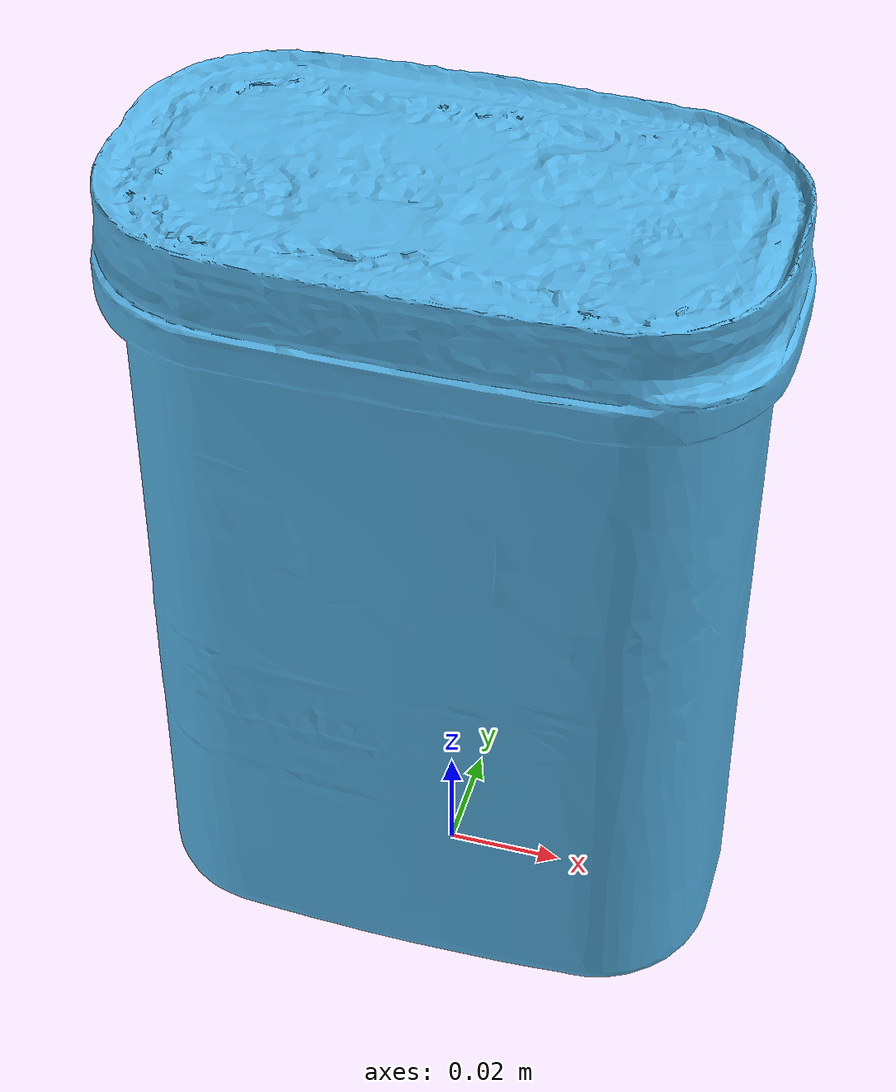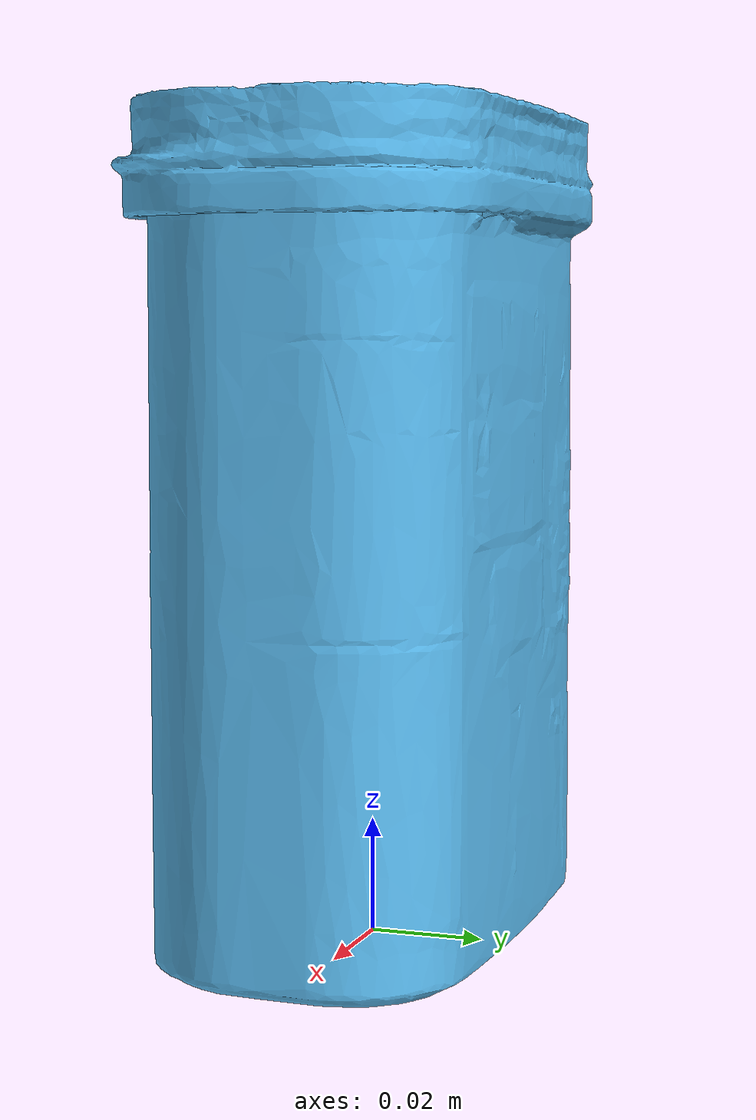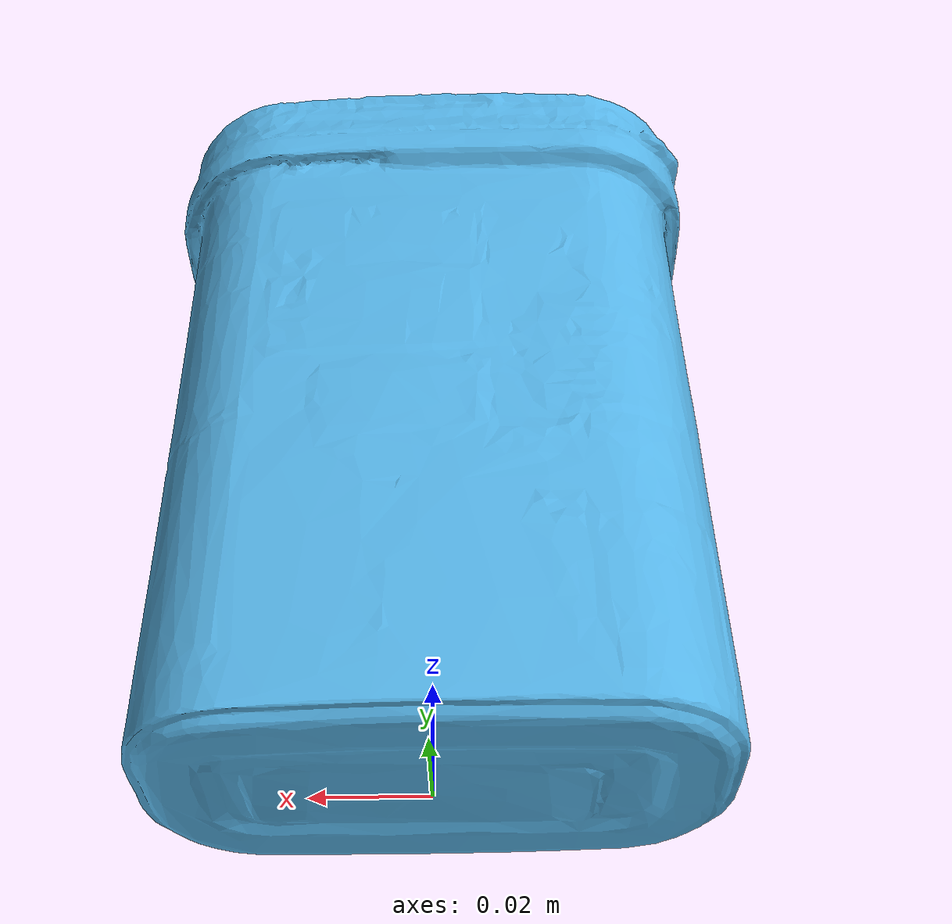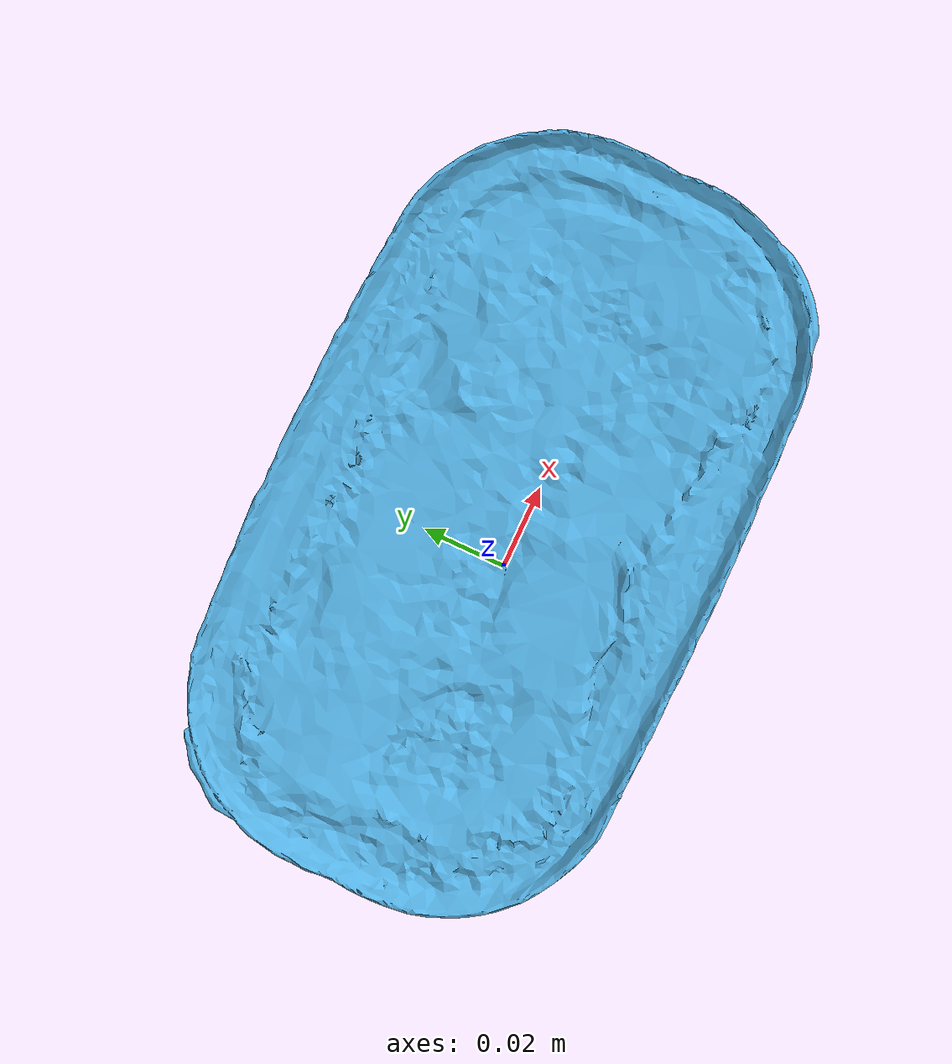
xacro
<?xml version='1.0'?>

<robot name="shoe_object" xmlns:xacro="http://www.ros.org/wiki/xacro">

  <!-- Scale the robot size to fit the environment -->
  <xacro:property name="scale" value="1.0" />

  <!-- Length along X-axis, Width along Y-axis, Height along Z-axis -->
  <xacro:property name="mower_width" value="${scale * 0.46}" />
  <xacro:property name="mower_length" value="${scale * 0.46}" />
  <xacro:property name="mower_height" value="${scale * 0.3}" />
  <xacro:property name="mower_mass" value="${scale * 10}" />

  <xacro:property name="wheel_mass" value="${scale * 1}" />
  <xacro:property name="wheel_inertia" value="${scale * 1e-3}" />

  <xacro:property name="wheel_kp" value="1000000.0" />
  <xacro:property name="wheel_kd" value="100.0" />
  <xacro:property name="wheel_mu1" value="1" />
  <xacro:property name="wheel_mu2" value="1" />
  <xacro:property name="wheel_slip1" value="0.5" />
  <xacro:property name="wheel_slip2" value="0" />

  <link name="shoe"></link>
  <link name="shoe_link">
    <inertial>
      <mass value="${wheel_mass}"/>
      <origin xyz="0.0 0 0" rpy=" 0 1.5707 1.5707"/>
      <inertia
        ixx="${wheel_inertia}" ixy="0" ixz="0"
        iyy="${wheel_inertia}" iyz="0"
        izz="${wheel_inertia}" />
    </inertial>
    <collision name="left_front_wheel_collision">
      <origin xyz="0 0 0" rpy=" 0 1.5707 1.5707"/>
      <geometry>
        <mesh filename="/home/biobe/.ignition/fuel/fuel.ignitionrobotics.org/googleresearch/models/reef_bantu/1/meshes/model.obj" scale="1 1 1"/>
      </geometry>
      <surface>
        <friction>
          <fdir1>1 0 0</fdir1>
          <kp>${wheel_kp}</kp> <!-- kp and kd for rubber -->
          <kd>${wheel_kd}</kd>
          <mu>${wheel_mu1}</mu>
          <mu2>${wheel_mu2}</mu2>
          <slip1>${wheel_slip1}</slip1>
          <slip2>${wheel_slip2}</slip2>
        </friction>
      </surface>
    </collision>
    <visual name="left_front_wheel_visual">
      <origin xyz="0 0 0" rpy=" 0 0 1.5707"/>
      <geometry>
        <mesh filename="/home/biobe/.ignition/fuel/fuel.ignitionrobotics.org/googleresearch/models/reef_bantu/1/meshes/model.obj" scale="1 1 1"/>
      </geometry>
    </visual>
  </link>
  <joint type="fixed" name="shoe_joint">
    <origin xyz="0 0 0" rpy="0 0 0"/>
    <child link="shoe_link"/>
    <parent link="shoe"/>
    <axis xyz="0 1 0" rpy="0 0 0"/>
    <limit effort="10000" velocity="1000"/>
    <joint_properties damping="1.0" friction="1.0"/>
  </joint>

</robot>
